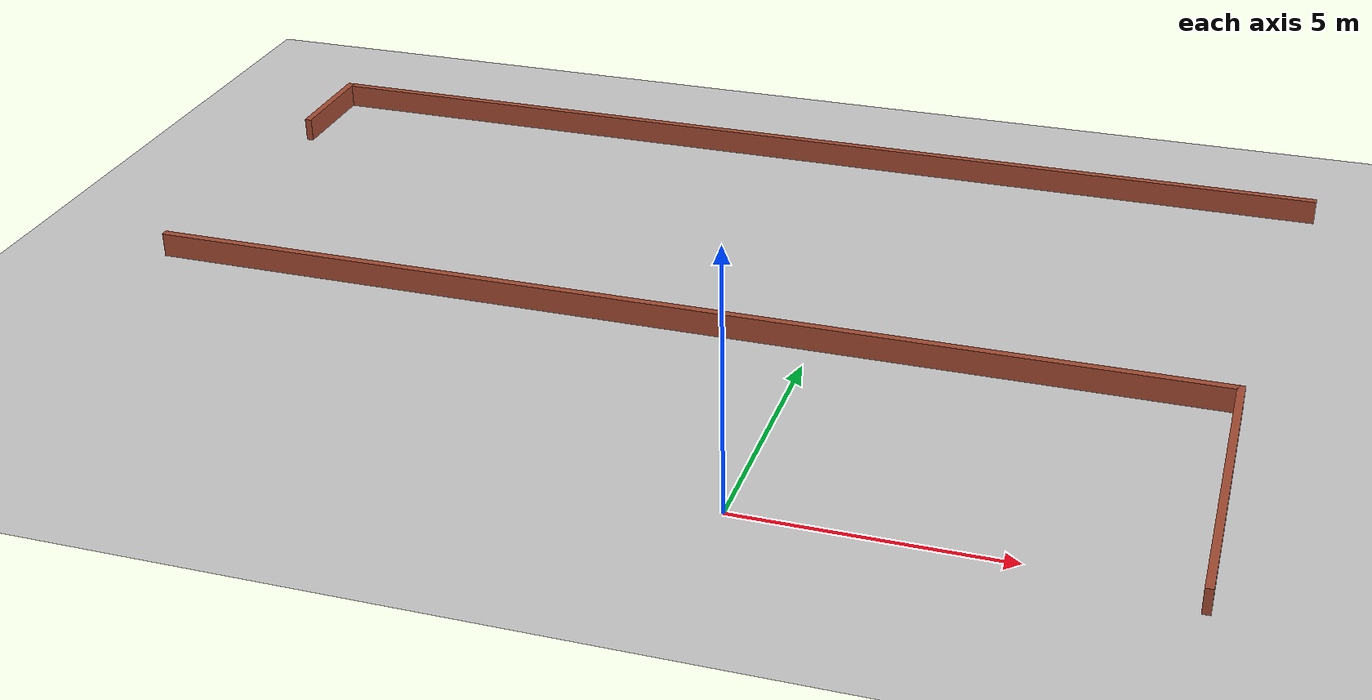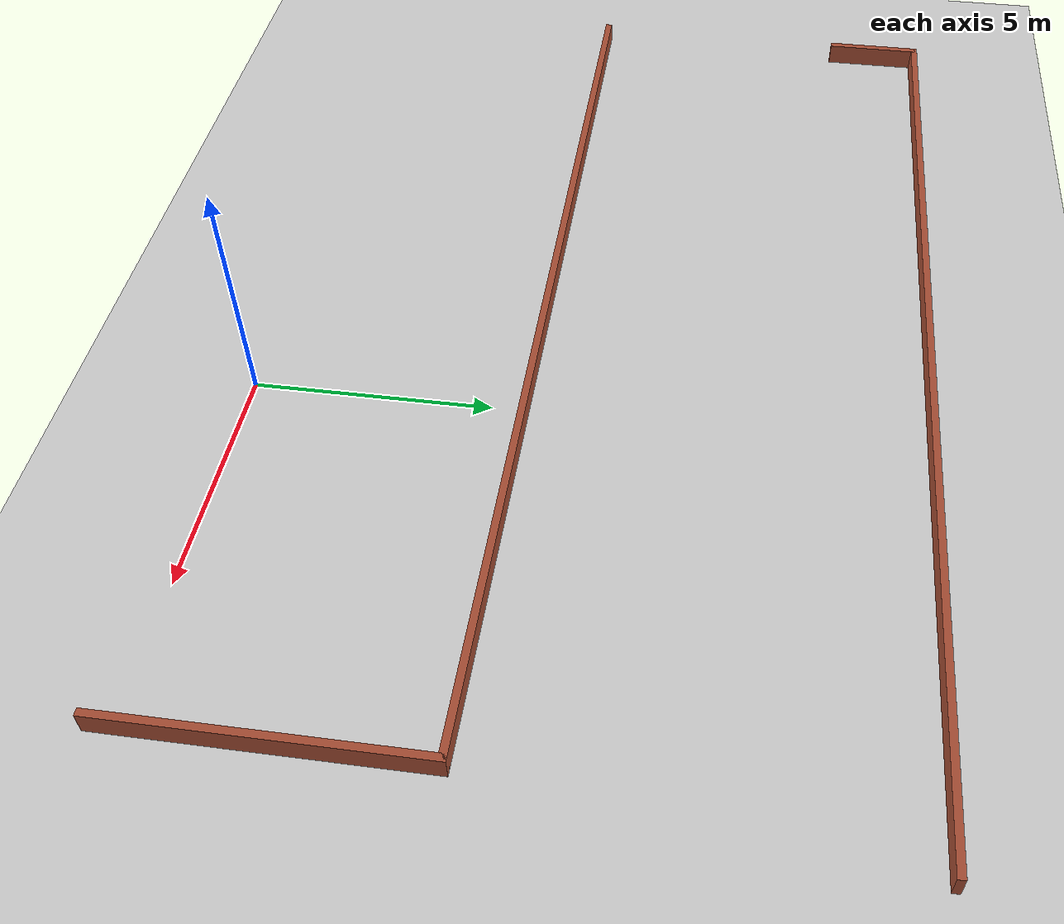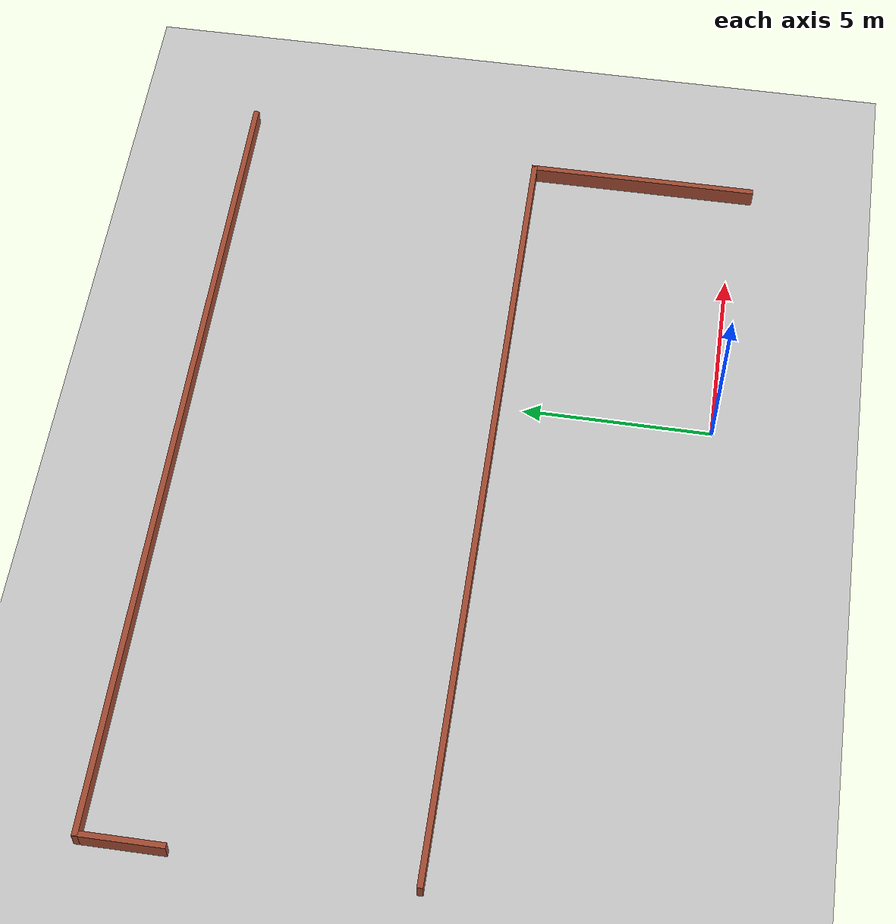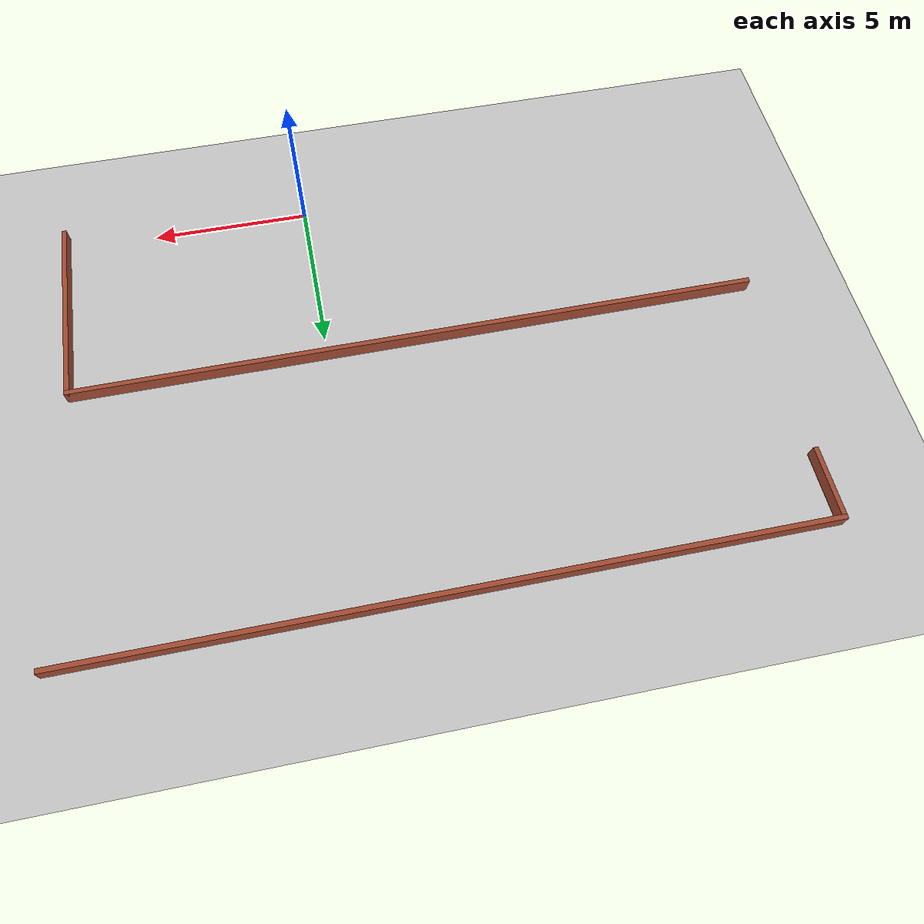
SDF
<sdf version="1.6">
 <world name="default">
  <light name="sun" type="directional">
   <pose>0 0 10 0 -0 0</pose>
   <diffuse>0.8 0.8 0.8 1</diffuse>
   <specular>0.2 0.2 0.2 1</specular>
   <attenuation>
    <range>1000</range>
    <constant>0.9</constant>
    <linear>0.01</linear>
    <quadratic>0.001</quadratic>
   </attenuation>
   <direction>-0.5 0.1 -0.9</direction>
  </light>
  <model name="ground_plane">
   <static>1</static>
   <link name="link">
    <collision name="collision">
     <geometry><plane><normal>0 0 1</normal><size>100 100</size></plane></geometry>
     <surface>
      <contact><collide_bitmask>65535</collide_bitmask></contact>
      <friction><ode><mu>100</mu><mu2>50</mu2></ode></friction>
     </surface>
    </collision>
    <visual name="visual">
     <cast_shadows>0</cast_shadows>
     <geometry><plane><normal>0 0 1</normal><size>100 100</size></plane></geometry>
     <material>
      <script><uri>file://media/materials/scripts/gazebo.material</uri><name>Gazebo/Grey</name></script>
     </material>
    </visual>
   </link>
  </model>
  <gravity>0 0 -9.8</gravity>
  <magnetic_field>6e-06 2.3e-05 -4.2e-05</magnetic_field>
  <atmosphere type="adiabatic"/>
  <physics name="default_physics" default="0" type="ode">
   <max_step_size>0.001</max_step_size>
   <real_time_factor>1</real_time_factor>
   <real_time_update_rate>1000</real_time_update_rate>
  </physics>
  <scene><ambient>0.4 0.4 0.4 1</ambient><background>0.7 0.7 0.7 1</background><shadows>1</shadows></scene>
  <audio><device>default</device></audio>
  <spherical_coordinates>
   <surface_model>EARTH_WGS84</surface_model>
   <latitude_deg>0</latitude_deg>
   <longitude_deg>0</longitude_deg>
   <elevation>0</elevation>
   <heading_deg>0</heading_deg>
  </spherical_coordinates>
  <model name="Untitled2">
   <pose>-2.44 6.7185 0 0 -0 0</pose>
   <link name="Wall_10">
    <collision name="Wall_10_Collision">
     <geometry><box><size>21.75 0.15 0.5</size></box></geometry>
     <pose>0 0 0.25 0 -0 0</pose>
    </collision>
    <visual name="Wall_10_Visual">
     <pose>0 0 0.25 0 -0 0</pose>
     <geometry><box><size>21.75 0.15 0.5</size></box></geometry>
     <material>
      <script><uri>file://media/materials/scripts/gazebo.material</uri><name>Gazebo/Bricks</name></script>
      <ambient>1 1 1 1</ambient>
     </material>
     <meta><layer>0</layer></meta>
    </visual>
    <pose>-0.425 -1.0385 0 0 -0 0</pose>
   </link>
   <link name="Wall_18">
    <collision name="Wall_18_Collision">
     <geometry><box><size>6.25 0.15 0.5</size></box></geometry>
     <pose>0 0 0.25 0 -0 0</pose>
    </collision>
    <visual name="Wall_18_Visual">
     <pose>0 0 0.25 0 -0 0</pose>
     <geometry><box><size>6.25 0.15 0.5</size></box></geometry>
     <material>
      <script><uri>file://media/materials/scripts/gazebo.material</uri><name>Gazebo/Bricks</name></script>
      <ambient>1 1 1 1</ambient>
     </material>
     <meta><layer>0</layer></meta>
    </visual>
    <pose>10.375 -4.0885 0 0 -0 -1.5708</pose>
   </link>
   <link name="Wall_21">
    <collision name="Wall_21_Collision">
     <geometry><box><size>22.5 0.15 0.5</size></box></geometry>
     <pose>0 0 0.25 0 -0 0</pose>
    </collision>
    <visual name="Wall_21_Visual">
     <pose>0 0 0.25 0 -0 0</pose>
     <geometry><box><size>22.5 0.15 0.5</size></box></geometry>
     <material>
      <script><uri>file://media/materials/scripts/gazebo.material</uri><name>Gazebo/Bricks</name></script>
      <ambient>1 1 1 1</ambient>
     </material>
     <meta><layer>0</layer></meta>
    </visual>
    <pose>0.05 7.1385 0 0 -0 3.14159</pose>
   </link>
   <link name="Wall_22">
    <collision name="Wall_22_Collision">
     <geometry><box><size>2.25 0.15 0.5</size></box></geometry>
     <pose>0 0 0.25 0 -0 0</pose>
    </collision>
    <visual name="Wall_22_Visual">
     <pose>0 0 0.25 0 -0 0</pose>
     <geometry><box><size>2.25 0.15 0.5</size></box></geometry>
     <material>
      <script><uri>file://media/materials/scripts/gazebo.material</uri><name>Gazebo/Bricks</name></script>
      <ambient>1 1 1 1</ambient>
     </material>
     <meta><layer>0</layer></meta>
    </visual>
    <pose>-11.125 6.0885 0 0 -0 -1.5708</pose>
   </link>
   <static>1</static>
  </model>
 </world>
</sdf>
